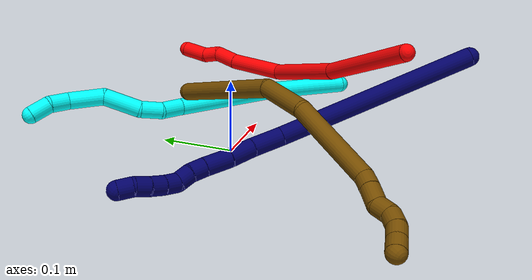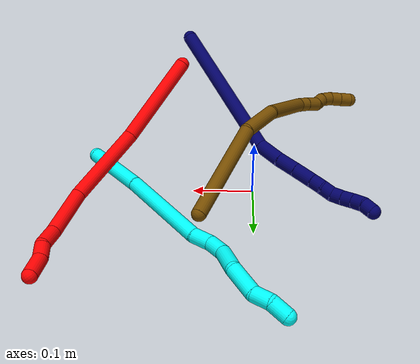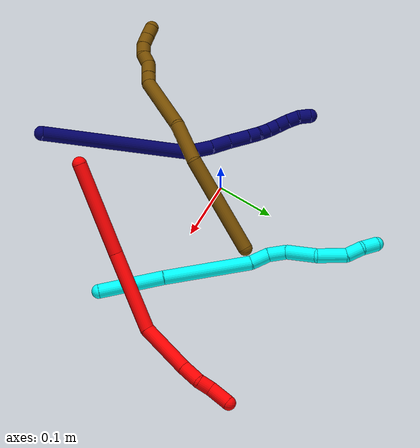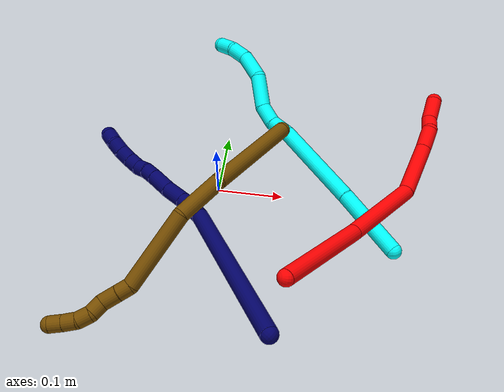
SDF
<sdf version="1.7">
 <world name="default">
  <model name="2">
   <static>0</static>
   <link name="2">
    <collision name="collision-cylinder-e_1_1_4">
     <pose>0.036446 0.018978 0.072016 -0.257671 0.45511 -0.059982</pose>
     <geometry><cylinder><radius>0.0125</radius><length>0.165829</length></cylinder></geometry>
     <surface>
      <friction><ode><mu>1.16</mu><mu2>1.16</mu2><slip1>0</slip1><slip2>0</slip2></ode></friction>
      <contact><ode><kp>1e+06</kp><kd>1</kd><max_vel>0</max_vel><min_depth>0.001</min_depth></ode></contact>
     </surface>
    </collision>
    <visual name="visual-cylinder-e_1_1_4">
     <pose>0.036446 0.018978 0.072016 -0.257671 0.45511 -0.059982</pose>
     <geometry><cylinder><radius>0.0125</radius><length>0.165829</length></cylinder></geometry>
     <material><ambient>1 0 0 1</ambient></material>
    </visual>
    <collision name="collision-cylinder-e_2_4_5">
     <pose>0.100207 0.063323 0.203759 -0.401623 0.398435 -0.082148</pose>
     <geometry><cylinder><radius>0.0125</radius><length>0.140811</length></cylinder></geometry>
     <surface>
      <friction><ode><mu>1.16</mu><mu2>1.16</mu2><slip1>0</slip1><slip2>0</slip2></ode></friction>
      <contact><ode><kp>1e+06</kp><kd>1</kd><max_vel>0</max_vel><min_depth>0.001</min_depth></ode></contact>
     </surface>
    </collision>
    <visual name="visual-cylinder-e_2_4_5">
     <pose>0.100207 0.063323 0.203759 -0.401623 0.398435 -0.082148</pose>
     <geometry><cylinder><radius>0.0125</radius><length>0.140811</length></cylinder></geometry>
     <material><ambient>1 0 0 1</ambient></material>
    </visual>
    <collision name="collision-cylinder-e_3_5_6">
     <pose>0.151952 0.118428 0.288609 -0.869343 0.560408 -0.265647</pose>
     <geometry><cylinder><radius>0.0125</radius><length>0.09192</length></cylinder></geometry>
     <surface>
      <friction><ode><mu>1.16</mu><mu2>1.16</mu2><slip1>0</slip1><slip2>0</slip2></ode></friction>
      <contact><ode><kp>1e+06</kp><kd>1</kd><max_vel>0</max_vel><min_depth>0.001</min_depth></ode></contact>
     </surface>
    </collision>
    <visual name="visual-cylinder-e_3_5_6">
     <pose>0.151952 0.118428 0.288609 -0.869343 0.560408 -0.265647</pose>
     <geometry><cylinder><radius>0.0125</radius><length>0.09192</length></cylinder></geometry>
     <material><ambient>1 0 0 1</ambient></material>
    </visual>
    <collision name="collision-cylinder-e_4_6_7">
     <pose>0.184764 0.162734 0.321548 -1.0783 0.469316 -0.284122</pose>
     <geometry><cylinder><radius>0.0125</radius><length>0.03707</length></cylinder></geometry>
     <surface>
      <friction><ode><mu>1.16</mu><mu2>1.16</mu2><slip1>0</slip1><slip2>0</slip2></ode></friction>
      <contact><ode><kp>1e+06</kp><kd>1</kd><max_vel>0</max_vel><min_depth>0.001</min_depth></ode></contact>
     </surface>
    </collision>
    <visual name="visual-cylinder-e_4_6_7">
     <pose>0.184764 0.162734 0.321548 -1.0783 0.469316 -0.284122</pose>
     <geometry><cylinder><radius>0.0125</radius><length>0.03707</length></cylinder></geometry>
     <material><ambient>1 0 0 1</ambient></material>
    </visual>
    <collision name="collision-cylinder-e_5_7_8">
     <pose>0.202827 0.182755 0.334383 -0.826984 0.917265 -0.426707</pose>
     <geometry><cylinder><radius>0.0125</radius><length>0.024382</length></cylinder></geometry>
     <surface>
      <friction><ode><mu>1.16</mu><mu2>1.16</mu2><slip1>0</slip1><slip2>0</slip2></ode></friction>
      <contact><ode><kp>1e+06</kp><kd>1</kd><max_vel>0</max_vel><min_depth>0.001</min_depth></ode></contact>
     </surface>
    </collision>
    <visual name="visual-cylinder-e_5_7_8">
     <pose>0.202827 0.182755 0.334383 -0.826984 0.917265 -0.426707</pose>
     <geometry><cylinder><radius>0.0125</radius><length>0.024382</length></cylinder></geometry>
     <material><ambient>1 0 0 1</ambient></material>
    </visual>
    <collision name="collision-cylinder-e_6_8_2">
     <pose>0.223385 0.202799 0.347679 -1.05474 0.57538 -0.341303</pose>
     <geometry><cylinder><radius>0.0125</radius><length>0.039988</length></cylinder></geometry>
     <surface>
      <friction><ode><mu>1.16</mu><mu2>1.16</mu2><slip1>0</slip1><slip2>0</slip2></ode></friction>
      <contact><ode><kp>1e+06</kp><kd>1</kd><max_vel>0</max_vel><min_depth>0.001</min_depth></ode></contact>
     </surface>
    </collision>
    <visual name="visual-cylinder-e_6_8_2">
     <pose>0.223385 0.202799 0.347679 -1.05474 0.57538 -0.341303</pose>
     <geometry><cylinder><radius>0.0125</radius><length>0.039988</length></cylinder></geometry>
     <material><ambient>1 0 0 1</ambient></material>
    </visual>
    <collision name="collision-sphere-2">
     <pose>0.234265 0.217389 0.355957 0 -0 0</pose>
     <geometry><sphere><radius>0.0125</radius></sphere></geometry>
     <surface>
      <friction><ode><mu>1.16</mu><mu2>1.16</mu2><slip1>0</slip1><slip2>0</slip2></ode></friction>
      <contact><ode><kp>1e+06</kp><kd>1</kd><max_vel>0</max_vel><min_depth>0.001</min_depth></ode></contact>
     </surface>
    </collision>
    <visual name="visual-sphere-2">
     <pose>0.234265 0.217389 0.355957 0 -0 0</pose>
     <geometry><sphere><radius>0.0125</radius></sphere></geometry>
     <material><ambient>1 0 0 1</ambient></material>
    </visual>
    <collision name="collision-sphere-4">
     <pose>0.072892 0.037957 0.144032 0 -0 0</pose>
     <geometry><sphere><radius>0.0125</radius></sphere></geometry>
     <surface>
      <friction><ode><mu>1.16</mu><mu2>1.16</mu2><slip1>0</slip1><slip2>0</slip2></ode></friction>
      <contact><ode><kp>1e+06</kp><kd>1</kd><max_vel>0</max_vel><min_depth>0.001</min_depth></ode></contact>
     </surface>
    </collision>
    <visual name="visual-sphere-4">
     <pose>0.072892 0.037957 0.144032 0 -0 0</pose>
     <geometry><sphere><radius>0.0125</radius></sphere></geometry>
     <material><ambient>1 0 0 1</ambient></material>
    </visual>
    <collision name="collision-sphere-1">
     <geometry><sphere><radius>0.0125</radius></sphere></geometry>
     <surface>
      <friction><ode><mu>1.16</mu><mu2>1.16</mu2><slip1>0</slip1><slip2>0</slip2></ode></friction>
      <contact><ode><kp>1e+06</kp><kd>1</kd><max_vel>0</max_vel><min_depth>0.001</min_depth></ode></contact>
     </surface>
    </collision>
    <visual name="visual-sphere-1">
     <geometry><sphere><radius>0.0125</radius></sphere></geometry>
     <material><ambient>1 0 0 1</ambient></material>
    </visual>
    <collision name="collision-sphere-8">
     <pose>0.212506 0.188209 0.339402 0 -0 0</pose>
     <geometry><sphere><radius>0.0125</radius></sphere></geometry>
     <surface>
      <friction><ode><mu>1.16</mu><mu2>1.16</mu2><slip1>0</slip1><slip2>0</slip2></ode></friction>
      <contact><ode><kp>1e+06</kp><kd>1</kd><max_vel>0</max_vel><min_depth>0.001</min_depth></ode></contact>
     </surface>
    </collision>
    <visual name="visual-sphere-8">
     <pose>0.212506 0.188209 0.339402 0 -0 0</pose>
     <geometry><sphere><radius>0.0125</radius></sphere></geometry>
     <material><ambient>1 0 0 1</ambient></material>
    </visual>
    <collision name="collision-sphere-5">
     <pose>0.127523 0.08869 0.263486 0 -0 0</pose>
     <geometry><sphere><radius>0.0125</radius></sphere></geometry>
     <surface>
      <friction><ode><mu>1.16</mu><mu2>1.16</mu2><slip1>0</slip1><slip2>0</slip2></ode></friction>
      <contact><ode><kp>1e+06</kp><kd>1</kd><max_vel>0</max_vel><min_depth>0.001</min_depth></ode></contact>
     </surface>
    </collision>
    <visual name="visual-sphere-5">
     <pose>0.127523 0.08869 0.263486 0 -0 0</pose>
     <geometry><sphere><radius>0.0125</radius></sphere></geometry>
     <material><ambient>1 0 0 1</ambient></material>
    </visual>
    <collision name="collision-sphere-6">
     <pose>0.176381 0.148167 0.313731 0 -0 0</pose>
     <geometry><sphere><radius>0.0125</radius></sphere></geometry>
     <surface>
      <friction><ode><mu>1.16</mu><mu2>1.16</mu2><slip1>0</slip1><slip2>0</slip2></ode></friction>
      <contact><ode><kp>1e+06</kp><kd>1</kd><max_vel>0</max_vel><min_depth>0.001</min_depth></ode></contact>
     </surface>
    </collision>
    <visual name="visual-sphere-6">
     <pose>0.176381 0.148167 0.313731 0 -0 0</pose>
     <geometry><sphere><radius>0.0125</radius></sphere></geometry>
     <material><ambient>1 0 0 1</ambient></material>
    </visual>
    <collision name="collision-sphere-7">
     <pose>0.193147 0.1773 0.329364 0 -0 0</pose>
     <geometry><sphere><radius>0.0125</radius></sphere></geometry>
     <surface>
      <friction><ode><mu>1.16</mu><mu2>1.16</mu2><slip1>0</slip1><slip2>0</slip2></ode></friction>
      <contact><ode><kp>1e+06</kp><kd>1</kd><max_vel>0</max_vel><min_depth>0.001</min_depth></ode></contact>
     </surface>
    </collision>
    <visual name="visual-sphere-7">
     <pose>0.193147 0.1773 0.329364 0 -0 0</pose>
     <geometry><sphere><radius>0.0125</radius></sphere></geometry>
     <material><ambient>1 0 0 1</ambient></material>
    </visual>
    <inertial>
     <pose>0.109698 0.083095 0.202277 0 -0 0</pose>
     <mass>0.5</mass>
     <inertia>
      <ixx>0.000593</ixx>
      <ixy>0</ixy>
      <ixz>0</ixz>
      <iyy>0.000615</iyy>
      <iyz>0</iyz>
      <izz>-0.000508</izz>
     </inertia>
    </inertial>
   </link>
   <pose>0.127476 -0.204652 0.125121 2.11398 0.479322 2.22743</pose>
  </model>
  <model name="3">
   <static>0</static>
   <link name="3">
    <collision name="collision-cylinder-e_1_1_4">
     <pose>-0.033278 0.033697 0.031546 -0.818345 -0.624642 0.278231</pose>
     <geometry><cylinder><radius>0.0125</radius><length>0.113807</length></cylinder></geometry>
     <surface>
      <friction><ode><mu>1.16</mu><mu2>1.16</mu2><slip1>0</slip1><slip2>0</slip2></ode></friction>
      <contact><ode><kp>1e+06</kp><kd>1</kd><max_vel>0</max_vel><min_depth>0.001</min_depth></ode></contact>
     </surface>
    </collision>
    <visual name="visual-cylinder-e_1_1_4">
     <pose>-0.033278 0.033697 0.031546 -0.818345 -0.624642 0.278231</pose>
     <geometry><cylinder><radius>0.0125</radius><length>0.113807</length></cylinder></geometry>
     <material><ambient>0.003922 1 0.996078 1</ambient></material>
    </visual>
    <collision name="collision-cylinder-e_2_4_5">
     <pose>-0.112471 0.11694 0.100061 -0.929783 -0.638847 0.328785</pose>
     <geometry><cylinder><radius>0.0125</radius><length>0.154011</length></cylinder></geometry>
     <surface>
      <friction><ode><mu>1.16</mu><mu2>1.16</mu2><slip1>0</slip1><slip2>0</slip2></ode></friction>
      <contact><ode><kp>1e+06</kp><kd>1</kd><max_vel>0</max_vel><min_depth>0.001</min_depth></ode></contact>
     </surface>
    </collision>
    <visual name="visual-cylinder-e_2_4_5">
     <pose>-0.112471 0.11694 0.100061 -0.929783 -0.638847 0.328785</pose>
     <geometry><cylinder><radius>0.0125</radius><length>0.154011</length></cylinder></geometry>
     <material><ambient>0.003922 1 0.996078 1</ambient></material>
    </visual>
    <collision name="collision-cylinder-e_3_5_6">
     <pose>-0.170806 0.173697 0.145405 -0.710694 -0.843567 0.330007</pose>
     <geometry><cylinder><radius>0.0125</radius><length>0.033248</length></cylinder></geometry>
     <surface>
      <friction><ode><mu>1.16</mu><mu2>1.16</mu2><slip1>0</slip1><slip2>0</slip2></ode></friction>
      <contact><ode><kp>1e+06</kp><kd>1</kd><max_vel>0</max_vel><min_depth>0.001</min_depth></ode></contact>
     </surface>
    </collision>
    <visual name="visual-cylinder-e_3_5_6">
     <pose>-0.170806 0.173697 0.145405 -0.710694 -0.843567 0.330007</pose>
     <geometry><cylinder><radius>0.0125</radius><length>0.033248</length></cylinder></geometry>
     <material><ambient>0.003922 1 0.996078 1</ambient></material>
    </visual>
    <collision name="collision-cylinder-e_4_6_7">
     <pose>-0.190839 0.190338 0.164587 -0.717565 -0.48808 0.186219</pose>
     <geometry><cylinder><radius>0.0125</radius><length>0.032478</length></cylinder></geometry>
     <surface>
      <friction><ode><mu>1.16</mu><mu2>1.16</mu2><slip1>0</slip1><slip2>0</slip2></ode></friction>
      <contact><ode><kp>1e+06</kp><kd>1</kd><max_vel>0</max_vel><min_depth>0.001</min_depth></ode></contact>
     </surface>
    </collision>
    <visual name="visual-cylinder-e_4_6_7">
     <pose>-0.190839 0.190338 0.164587 -0.717565 -0.48808 0.186219</pose>
     <geometry><cylinder><radius>0.0125</radius><length>0.032478</length></cylinder></geometry>
     <material><ambient>0.003922 1 0.996078 1</ambient></material>
    </visual>
    <collision name="collision-cylinder-e_5_7_8">
     <pose>-0.201576 0.217037 0.196853 -0.677593 -0.112847 0.039802</pose>
     <geometry><cylinder><radius>0.0125</radius><length>0.055442</length></cylinder></geometry>
     <surface>
      <friction><ode><mu>1.16</mu><mu2>1.16</mu2><slip1>0</slip1><slip2>0</slip2></ode></friction>
      <contact><ode><kp>1e+06</kp><kd>1</kd><max_vel>0</max_vel><min_depth>0.001</min_depth></ode></contact>
     </surface>
    </collision>
    <visual name="visual-cylinder-e_5_7_8">
     <pose>-0.201576 0.217037 0.196853 -0.677593 -0.112847 0.039802</pose>
     <geometry><cylinder><radius>0.0125</radius><length>0.055442</length></cylinder></geometry>
     <material><ambient>0.003922 1 0.996078 1</ambient></material>
    </visual>
    <collision name="collision-cylinder-e_6_8_9">
     <pose>-0.216807 0.253373 0.230854 -0.989015 -0.487823 0.26678</pose>
     <geometry><cylinder><radius>0.0125</radius><length>0.051672</length></cylinder></geometry>
     <surface>
      <friction><ode><mu>1.16</mu><mu2>1.16</mu2><slip1>0</slip1><slip2>0</slip2></ode></friction>
      <contact><ode><kp>1e+06</kp><kd>1</kd><max_vel>0</max_vel><min_depth>0.001</min_depth></ode></contact>
     </surface>
    </collision>
    <visual name="visual-cylinder-e_6_8_9">
     <pose>-0.216807 0.253373 0.230854 -0.989015 -0.487823 0.26678</pose>
     <geometry><cylinder><radius>0.0125</radius><length>0.051672</length></cylinder></geometry>
     <material><ambient>0.003922 1 0.996078 1</ambient></material>
    </visual>
    <collision name="collision-cylinder-e_7_9_10">
     <pose>-0.239954 0.278819 0.250783 -0.71216 -0.84676 0.332124</pose>
     <geometry><cylinder><radius>0.0125</radius><length>0.029469</length></cylinder></geometry>
     <surface>
      <friction><ode><mu>1.16</mu><mu2>1.16</mu2><slip1>0</slip1><slip2>0</slip2></ode></friction>
      <contact><ode><kp>1e+06</kp><kd>1</kd><max_vel>0</max_vel><min_depth>0.001</min_depth></ode></contact>
     </surface>
    </collision>
    <visual name="visual-cylinder-e_7_9_10">
     <pose>-0.239954 0.278819 0.250783 -0.71216 -0.84676 0.332124</pose>
     <geometry><cylinder><radius>0.0125</radius><length>0.029469</length></cylinder></geometry>
     <material><ambient>0.003922 1 0.996078 1</ambient></material>
    </visual>
    <collision name="collision-cylinder-e_8_10_2">
     <pose>-0.262493 0.294401 0.260645 -1.30817 -0.878794 0.691764</pose>
     <geometry><cylinder><radius>0.0125</radius><length>0.029873</length></cylinder></geometry>
     <surface>
      <friction><ode><mu>1.16</mu><mu2>1.16</mu2><slip1>0</slip1><slip2>0</slip2></ode></friction>
      <contact><ode><kp>1e+06</kp><kd>1</kd><max_vel>0</max_vel><min_depth>0.001</min_depth></ode></contact>
     </surface>
    </collision>
    <visual name="visual-cylinder-e_8_10_2">
     <pose>-0.262493 0.294401 0.260645 -1.30817 -0.878794 0.691764</pose>
     <geometry><cylinder><radius>0.0125</radius><length>0.029873</length></cylinder></geometry>
     <material><ambient>0.003922 1 0.996078 1</ambient></material>
    </visual>
    <collision name="collision-sphere-2">
     <pose>-0.273994 0.303605 0.26312 0 -0 0</pose>
     <geometry><sphere><radius>0.0125</radius></sphere></geometry>
     <surface>
      <friction><ode><mu>1.16</mu><mu2>1.16</mu2><slip1>0</slip1><slip2>0</slip2></ode></friction>
      <contact><ode><kp>1e+06</kp><kd>1</kd><max_vel>0</max_vel><min_depth>0.001</min_depth></ode></contact>
     </surface>
    </collision>
    <visual name="visual-sphere-2">
     <pose>-0.273994 0.303605 0.26312 0 -0 0</pose>
     <geometry><sphere><radius>0.0125</radius></sphere></geometry>
     <material><ambient>0.003922 1 0.996078 1</ambient></material>
    </visual>
    <collision name="collision-sphere-10">
     <pose>-0.250992 0.285197 0.258171 0 -0 0</pose>
     <geometry><sphere><radius>0.0125</radius></sphere></geometry>
     <surface>
      <friction><ode><mu>1.16</mu><mu2>1.16</mu2><slip1>0</slip1><slip2>0</slip2></ode></friction>
      <contact><ode><kp>1e+06</kp><kd>1</kd><max_vel>0</max_vel><min_depth>0.001</min_depth></ode></contact>
     </surface>
    </collision>
    <visual name="visual-sphere-10">
     <pose>-0.250992 0.285197 0.258171 0 -0 0</pose>
     <geometry><sphere><radius>0.0125</radius></sphere></geometry>
     <material><ambient>0.003922 1 0.996078 1</ambient></material>
    </visual>
    <collision name="collision-sphere-9">
     <pose>-0.228916 0.272441 0.243395 0 -0 0</pose>
     <geometry><sphere><radius>0.0125</radius></sphere></geometry>
     <surface>
      <friction><ode><mu>1.16</mu><mu2>1.16</mu2><slip1>0</slip1><slip2>0</slip2></ode></friction>
      <contact><ode><kp>1e+06</kp><kd>1</kd><max_vel>0</max_vel><min_depth>0.001</min_depth></ode></contact>
     </surface>
    </collision>
    <visual name="visual-sphere-9">
     <pose>-0.228916 0.272441 0.243395 0 -0 0</pose>
     <geometry><sphere><radius>0.0125</radius></sphere></geometry>
     <material><ambient>0.003922 1 0.996078 1</ambient></material>
    </visual>
    <collision name="collision-sphere-4">
     <pose>-0.066555 0.067393 0.063093 0 -0 0</pose>
     <geometry><sphere><radius>0.0125</radius></sphere></geometry>
     <surface>
      <friction><ode><mu>1.16</mu><mu2>1.16</mu2><slip1>0</slip1><slip2>0</slip2></ode></friction>
      <contact><ode><kp>1e+06</kp><kd>1</kd><max_vel>0</max_vel><min_depth>0.001</min_depth></ode></contact>
     </surface>
    </collision>
    <visual name="visual-sphere-4">
     <pose>-0.066555 0.067393 0.063093 0 -0 0</pose>
     <geometry><sphere><radius>0.0125</radius></sphere></geometry>
     <material><ambient>0.003922 1 0.996078 1</ambient></material>
    </visual>
    <collision name="collision-sphere-1">
     <geometry><sphere><radius>0.0125</radius></sphere></geometry>
     <surface>
      <friction><ode><mu>1.16</mu><mu2>1.16</mu2><slip1>0</slip1><slip2>0</slip2></ode></friction>
      <contact><ode><kp>1e+06</kp><kd>1</kd><max_vel>0</max_vel><min_depth>0.001</min_depth></ode></contact>
     </surface>
    </collision>
    <visual name="visual-sphere-1">
     <geometry><sphere><radius>0.0125</radius></sphere></geometry>
     <material><ambient>0.003922 1 0.996078 1</ambient></material>
    </visual>
    <collision name="collision-sphere-8">
     <pose>-0.204697 0.234306 0.218312 0 -0 0</pose>
     <geometry><sphere><radius>0.0125</radius></sphere></geometry>
     <surface>
      <friction><ode><mu>1.16</mu><mu2>1.16</mu2><slip1>0</slip1><slip2>0</slip2></ode></friction>
      <contact><ode><kp>1e+06</kp><kd>1</kd><max_vel>0</max_vel><min_depth>0.001</min_depth></ode></contact>
     </surface>
    </collision>
    <visual name="visual-sphere-8">
     <pose>-0.204697 0.234306 0.218312 0 -0 0</pose>
     <geometry><sphere><radius>0.0125</radius></sphere></geometry>
     <material><ambient>0.003922 1 0.996078 1</ambient></material>
    </visual>
    <collision name="collision-sphere-5">
     <pose>-0.158387 0.166487 0.137029 0 -0 0</pose>
     <geometry><sphere><radius>0.0125</radius></sphere></geometry>
     <surface>
      <friction><ode><mu>1.16</mu><mu2>1.16</mu2><slip1>0</slip1><slip2>0</slip2></ode></friction>
      <contact><ode><kp>1e+06</kp><kd>1</kd><max_vel>0</max_vel><min_depth>0.001</min_depth></ode></contact>
     </surface>
    </collision>
    <visual name="visual-sphere-5">
     <pose>-0.158387 0.166487 0.137029 0 -0 0</pose>
     <geometry><sphere><radius>0.0125</radius></sphere></geometry>
     <material><ambient>0.003922 1 0.996078 1</ambient></material>
    </visual>
    <collision name="collision-sphere-6">
     <pose>-0.183224 0.180906 0.153781 0 -0 0</pose>
     <geometry><sphere><radius>0.0125</radius></sphere></geometry>
     <surface>
      <friction><ode><mu>1.16</mu><mu2>1.16</mu2><slip1>0</slip1><slip2>0</slip2></ode></friction>
      <contact><ode><kp>1e+06</kp><kd>1</kd><max_vel>0</max_vel><min_depth>0.001</min_depth></ode></contact>
     </surface>
    </collision>
    <visual name="visual-sphere-6">
     <pose>-0.183224 0.180906 0.153781 0 -0 0</pose>
     <geometry><sphere><radius>0.0125</radius></sphere></geometry>
     <material><ambient>0.003922 1 0.996078 1</ambient></material>
    </visual>
    <collision name="collision-sphere-7">
     <pose>-0.198454 0.199769 0.175393 0 -0 0</pose>
     <geometry><sphere><radius>0.0125</radius></sphere></geometry>
     <surface>
      <friction><ode><mu>1.16</mu><mu2>1.16</mu2><slip1>0</slip1><slip2>0</slip2></ode></friction>
      <contact><ode><kp>1e+06</kp><kd>1</kd><max_vel>0</max_vel><min_depth>0.001</min_depth></ode></contact>
     </surface>
    </collision>
    <visual name="visual-sphere-7">
     <pose>-0.198454 0.199769 0.175393 0 -0 0</pose>
     <geometry><sphere><radius>0.0125</radius></sphere></geometry>
     <material><ambient>0.003922 1 0.996078 1</ambient></material>
    </visual>
    <inertial>
     <pose>-0.140555 0.151877 0.134399 0 -0 0</pose>
     <mass>0.5</mass>
     <inertia><ixx>0.000468</ixx><ixy>0</ixy><ixz>0</ixz><iyy>0.000496</iyy><iyz>0</iyz><izz>-5e-06</izz></inertia>
    </inertial>
   </link>
   <pose>0.275285 -0.079087 0.011495 -0.512385 -0.234053 0.086218</pose>
  </model>
  <model name="7">
   <static>0</static>
   <link name="7">
    <collision name="collision-cylinder-e_1_1_4">
     <pose>-0.120984 0.043203 0.034342 -0.899172 -1.14282 0.60168</pose>
     <geometry><cylinder><radius>0.0125</radius><length>0.265956</length></cylinder></geometry>
     <surface>
      <friction><ode><mu>1.16</mu><mu2>1.16</mu2><slip1>0</slip1><slip2>0</slip2></ode></friction>
      <contact><ode><kp>1e+06</kp><kd>1</kd><max_vel>0</max_vel><min_depth>0.001</min_depth></ode></contact>
     </surface>
    </collision>
    <visual name="visual-cylinder-e_1_1_4">
     <pose>-0.120984 0.043203 0.034342 -0.899172 -1.14282 0.60168</pose>
     <geometry><cylinder><radius>0.0125</radius><length>0.265956</length></cylinder></geometry>
     <material><ambient>0.003922 0 0.403922 1</ambient></material>
    </visual>
    <collision name="collision-cylinder-e_2_4_5">
     <pose>-0.263735 0.088168 0.069987 -0.934211 -1.47048 0.855854</pose>
     <geometry><cylinder><radius>0.0125</radius><length>0.043752</length></cylinder></geometry>
     <surface>
      <friction><ode><mu>1.16</mu><mu2>1.16</mu2><slip1>0</slip1><slip2>0</slip2></ode></friction>
      <contact><ode><kp>1e+06</kp><kd>1</kd><max_vel>0</max_vel><min_depth>0.001</min_depth></ode></contact>
     </surface>
    </collision>
    <visual name="visual-cylinder-e_2_4_5">
     <pose>-0.263735 0.088168 0.069987 -0.934211 -1.47048 0.855854</pose>
     <geometry><cylinder><radius>0.0125</radius><length>0.043752</length></cylinder></geometry>
     <material><ambient>0.003922 0 0.403922 1</ambient></material>
    </visual>
    <collision name="collision-cylinder-e_3_5_6">
     <pose>-0.302438 0.090888 0.070542 -2.23348 -1.49915 2.17572</pose>
     <geometry><cylinder><radius>0.0125</radius><length>0.033961</length></cylinder></geometry>
     <surface>
      <friction><ode><mu>1.16</mu><mu2>1.16</mu2><slip1>0</slip1><slip2>0</slip2></ode></friction>
      <contact><ode><kp>1e+06</kp><kd>1</kd><max_vel>0</max_vel><min_depth>0.001</min_depth></ode></contact>
     </surface>
    </collision>
    <visual name="visual-cylinder-e_3_5_6">
     <pose>-0.302438 0.090888 0.070542 -2.23348 -1.49915 2.17572</pose>
     <geometry><cylinder><radius>0.0125</radius><length>0.033961</length></cylinder></geometry>
     <material><ambient>0.003922 0 0.403922 1</ambient></material>
    </visual>
    <collision name="collision-cylinder-e_4_6_7">
     <pose>-0.337367 0.092243 0.070501 -0.511421 -1.52575 0.489799</pose>
     <geometry><cylinder><radius>0.0125</radius><length>0.036021</length></cylinder></geometry>
     <surface>
      <friction><ode><mu>1.16</mu><mu2>1.16</mu2><slip1>0</slip1><slip2>0</slip2></ode></friction>
      <contact><ode><kp>1e+06</kp><kd>1</kd><max_vel>0</max_vel><min_depth>0.001</min_depth></ode></contact>
     </surface>
    </collision>
    <visual name="visual-cylinder-e_4_6_7">
     <pose>-0.337367 0.092243 0.070501 -0.511421 -1.52575 0.489799</pose>
     <geometry><cylinder><radius>0.0125</radius><length>0.036021</length></cylinder></geometry>
     <material><ambient>0.003922 0 0.403922 1</ambient></material>
    </visual>
    <collision name="collision-cylinder-e_5_7_8">
     <pose>-0.365413 0.093203 0.071168 -1.64254 -1.51476 1.58654</pose>
     <geometry><cylinder><radius>0.0125</radius><length>0.020137</length></cylinder></geometry>
     <surface>
      <friction><ode><mu>1.16</mu><mu2>1.16</mu2><slip1>0</slip1><slip2>0</slip2></ode></friction>
      <contact><ode><kp>1e+06</kp><kd>1</kd><max_vel>0</max_vel><min_depth>0.001</min_depth></ode></contact>
     </surface>
    </collision>
    <visual name="visual-cylinder-e_5_7_8">
     <pose>-0.365413 0.093203 0.071168 -1.64254 -1.51476 1.58654</pose>
     <geometry><cylinder><radius>0.0125</radius><length>0.020137</length></cylinder></geometry>
     <material><ambient>0.003922 0 0.403922 1</ambient></material>
    </visual>
    <collision name="collision-cylinder-e_6_8_9">
     <pose>-0.385156 0.095835 0.069349 -2.28055 -1.29627 2.05128</pose>
     <geometry><cylinder><radius>0.0125</radius><length>0.020134</length></cylinder></geometry>
     <surface>
      <friction><ode><mu>1.16</mu><mu2>1.16</mu2><slip1>0</slip1><slip2>0</slip2></ode></friction>
      <contact><ode><kp>1e+06</kp><kd>1</kd><max_vel>0</max_vel><min_depth>0.001</min_depth></ode></contact>
     </surface>
    </collision>
    <visual name="visual-cylinder-e_6_8_9">
     <pose>-0.385156 0.095835 0.069349 -2.28055 -1.29627 2.05128</pose>
     <geometry><cylinder><radius>0.0125</radius><length>0.020134</length></cylinder></geometry>
     <material><ambient>0.003922 0 0.403922 1</ambient></material>
    </visual>
    <collision name="collision-cylinder-e_7_9_10">
     <pose>-0.404614 0.095741 0.067518 1.59502 -1.35265 -1.37637</pose>
     <geometry><cylinder><radius>0.0125</radius><length>0.020011</length></cylinder></geometry>
     <surface>
      <friction><ode><mu>1.16</mu><mu2>1.16</mu2><slip1>0</slip1><slip2>0</slip2></ode></friction>
      <contact><ode><kp>1e+06</kp><kd>1</kd><max_vel>0</max_vel><min_depth>0.001</min_depth></ode></contact>
     </surface>
    </collision>
    <visual name="visual-cylinder-e_7_9_10">
     <pose>-0.404614 0.095741 0.067518 1.59502 -1.35265 -1.37637</pose>
     <geometry><cylinder><radius>0.0125</radius><length>0.020011</length></cylinder></geometry>
     <material><ambient>0.003922 0 0.403922 1</ambient></material>
    </visual>
    <collision name="collision-cylinder-e_8_10_11">
     <pose>-0.423927 0.090587 0.067885 1.43133 -1.26448 -1.13421</pose>
     <geometry><cylinder><radius>0.0125</radius><length>0.02002</length></cylinder></geometry>
     <surface>
      <friction><ode><mu>1.16</mu><mu2>1.16</mu2><slip1>0</slip1><slip2>0</slip2></ode></friction>
      <contact><ode><kp>1e+06</kp><kd>1</kd><max_vel>0</max_vel><min_depth>0.001</min_depth></ode></contact>
     </surface>
    </collision>
    <visual name="visual-cylinder-e_8_10_11">
     <pose>-0.423927 0.090587 0.067885 1.43133 -1.26448 -1.13421</pose>
     <geometry><cylinder><radius>0.0125</radius><length>0.02002</length></cylinder></geometry>
     <material><ambient>0.003922 0 0.403922 1</ambient></material>
    </visual>
    <collision name="collision-cylinder-e_9_11_12">
     <pose>-0.442909 0.084641 0.069798 1.10329 -1.23328 -0.822641</pose>
     <geometry><cylinder><radius>0.0125</radius><length>0.020005</length></cylinder></geometry>
     <surface>
      <friction><ode><mu>1.16</mu><mu2>1.16</mu2><slip1>0</slip1><slip2>0</slip2></ode></friction>
      <contact><ode><kp>1e+06</kp><kd>1</kd><max_vel>0</max_vel><min_depth>0.001</min_depth></ode></contact>
     </surface>
    </collision>
    <visual name="visual-cylinder-e_9_11_12">
     <pose>-0.442909 0.084641 0.069798 1.10329 -1.23328 -0.822641</pose>
     <geometry><cylinder><radius>0.0125</radius><length>0.020005</length></cylinder></geometry>
     <material><ambient>0.003922 0 0.403922 1</ambient></material>
    </visual>
    <collision name="collision-cylinder-e_10_12_2">
     <pose>-0.462123 0.081884 0.07339 -0.095043 -1.35834 0.076747</pose>
     <geometry><cylinder><radius>0.0125</radius><length>0.020001</length></cylinder></geometry>
     <surface>
      <friction><ode><mu>1.16</mu><mu2>1.16</mu2><slip1>0</slip1><slip2>0</slip2></ode></friction>
      <contact><ode><kp>1e+06</kp><kd>1</kd><max_vel>0</max_vel><min_depth>0.001</min_depth></ode></contact>
     </surface>
    </collision>
    <visual name="visual-cylinder-e_10_12_2">
     <pose>-0.462123 0.081884 0.07339 -0.095043 -1.35834 0.076747</pose>
     <geometry><cylinder><radius>0.0125</radius><length>0.020001</length></cylinder></geometry>
     <material><ambient>0.003922 0 0.403922 1</ambient></material>
    </visual>
    <collision name="collision-sphere-2">
     <pose>-0.471899 0.082084 0.075489 0 -0 0</pose>
     <geometry><sphere><radius>0.0125</radius></sphere></geometry>
     <surface>
      <friction><ode><mu>1.16</mu><mu2>1.16</mu2><slip1>0</slip1><slip2>0</slip2></ode></friction>
      <contact><ode><kp>1e+06</kp><kd>1</kd><max_vel>0</max_vel><min_depth>0.001</min_depth></ode></contact>
     </surface>
    </collision>
    <visual name="visual-sphere-2">
     <pose>-0.471899 0.082084 0.075489 0 -0 0</pose>
     <geometry><sphere><radius>0.0125</radius></sphere></geometry>
     <material><ambient>0.003922 0 0.403922 1</ambient></material>
    </visual>
    <collision name="collision-sphere-12">
     <pose>-0.452348 0.081684 0.07129 0 -0 0</pose>
     <geometry><sphere><radius>0.0125</radius></sphere></geometry>
     <surface>
      <friction><ode><mu>1.16</mu><mu2>1.16</mu2><slip1>0</slip1><slip2>0</slip2></ode></friction>
      <contact><ode><kp>1e+06</kp><kd>1</kd><max_vel>0</max_vel><min_depth>0.001</min_depth></ode></contact>
     </surface>
    </collision>
    <visual name="visual-sphere-12">
     <pose>-0.452348 0.081684 0.07129 0 -0 0</pose>
     <geometry><sphere><radius>0.0125</radius></sphere></geometry>
     <material><ambient>0.003922 0 0.403922 1</ambient></material>
    </visual>
    <collision name="collision-sphere-11">
     <pose>-0.433471 0.087597 0.068305 0 -0 0</pose>
     <geometry><sphere><radius>0.0125</radius></sphere></geometry>
     <surface>
      <friction><ode><mu>1.16</mu><mu2>1.16</mu2><slip1>0</slip1><slip2>0</slip2></ode></friction>
      <contact><ode><kp>1e+06</kp><kd>1</kd><max_vel>0</max_vel><min_depth>0.001</min_depth></ode></contact>
     </surface>
    </collision>
    <visual name="visual-sphere-11">
     <pose>-0.433471 0.087597 0.068305 0 -0 0</pose>
     <geometry><sphere><radius>0.0125</radius></sphere></geometry>
     <material><ambient>0.003922 0 0.403922 1</ambient></material>
    </visual>
    <collision name="collision-sphere-10">
     <pose>-0.414383 0.093576 0.067466 0 -0 0</pose>
     <geometry><sphere><radius>0.0125</radius></sphere></geometry>
     <surface>
      <friction><ode><mu>1.16</mu><mu2>1.16</mu2><slip1>0</slip1><slip2>0</slip2></ode></friction>
      <contact><ode><kp>1e+06</kp><kd>1</kd><max_vel>0</max_vel><min_depth>0.001</min_depth></ode></contact>
     </surface>
    </collision>
    <visual name="visual-sphere-10">
     <pose>-0.414383 0.093576 0.067466 0 -0 0</pose>
     <geometry><sphere><radius>0.0125</radius></sphere></geometry>
     <material><ambient>0.003922 0 0.403922 1</ambient></material>
    </visual>
    <collision name="collision-sphere-9">
     <pose>-0.394846 0.097905 0.067571 0 -0 0</pose>
     <geometry><sphere><radius>0.0125</radius></sphere></geometry>
     <surface>
      <friction><ode><mu>1.16</mu><mu2>1.16</mu2><slip1>0</slip1><slip2>0</slip2></ode></friction>
      <contact><ode><kp>1e+06</kp><kd>1</kd><max_vel>0</max_vel><min_depth>0.001</min_depth></ode></contact>
     </surface>
    </collision>
    <visual name="visual-sphere-9">
     <pose>-0.394846 0.097905 0.067571 0 -0 0</pose>
     <geometry><sphere><radius>0.0125</radius></sphere></geometry>
     <material><ambient>0.003922 0 0.403922 1</ambient></material>
    </visual>
    <collision name="collision-sphere-4">
     <pose>-0.241969 0.086407 0.068685 0 -0 0</pose>
     <geometry><sphere><radius>0.0125</radius></sphere></geometry>
     <surface>
      <friction><ode><mu>1.16</mu><mu2>1.16</mu2><slip1>0</slip1><slip2>0</slip2></ode></friction>
      <contact><ode><kp>1e+06</kp><kd>1</kd><max_vel>0</max_vel><min_depth>0.001</min_depth></ode></contact>
     </surface>
    </collision>
    <visual name="visual-sphere-4">
     <pose>-0.241969 0.086407 0.068685 0 -0 0</pose>
     <geometry><sphere><radius>0.0125</radius></sphere></geometry>
     <material><ambient>0.003922 0 0.403922 1</ambient></material>
    </visual>
    <collision name="collision-sphere-1">
     <geometry><sphere><radius>0.0125</radius></sphere></geometry>
     <surface>
      <friction><ode><mu>1.16</mu><mu2>1.16</mu2><slip1>0</slip1><slip2>0</slip2></ode></friction>
      <contact><ode><kp>1e+06</kp><kd>1</kd><max_vel>0</max_vel><min_depth>0.001</min_depth></ode></contact>
     </surface>
    </collision>
    <visual name="visual-sphere-1">
     <geometry><sphere><radius>0.0125</radius></sphere></geometry>
     <material><ambient>0.003922 0 0.403922 1</ambient></material>
    </visual>
    <collision name="collision-sphere-8">
     <pose>-0.375465 0.093765 0.071127 0 -0 0</pose>
     <geometry><sphere><radius>0.0125</radius></sphere></geometry>
     <surface>
      <friction><ode><mu>1.16</mu><mu2>1.16</mu2><slip1>0</slip1><slip2>0</slip2></ode></friction>
      <contact><ode><kp>1e+06</kp><kd>1</kd><max_vel>0</max_vel><min_depth>0.001</min_depth></ode></contact>
     </surface>
    </collision>
    <visual name="visual-sphere-8">
     <pose>-0.375465 0.093765 0.071127 0 -0 0</pose>
     <geometry><sphere><radius>0.0125</radius></sphere></geometry>
     <material><ambient>0.003922 0 0.403922 1</ambient></material>
    </visual>
    <collision name="collision-sphere-5">
     <pose>-0.285501 0.08993 0.071289 0 -0 0</pose>
     <geometry><sphere><radius>0.0125</radius></sphere></geometry>
     <surface>
      <friction><ode><mu>1.16</mu><mu2>1.16</mu2><slip1>0</slip1><slip2>0</slip2></ode></friction>
      <contact><ode><kp>1e+06</kp><kd>1</kd><max_vel>0</max_vel><min_depth>0.001</min_depth></ode></contact>
     </surface>
    </collision>
    <visual name="visual-sphere-5">
     <pose>-0.285501 0.08993 0.071289 0 -0 0</pose>
     <geometry><sphere><radius>0.0125</radius></sphere></geometry>
     <material><ambient>0.003922 0 0.403922 1</ambient></material>
    </visual>
    <collision name="collision-sphere-6">
     <pose>-0.319375 0.091847 0.069794 0 -0 0</pose>
     <geometry><sphere><radius>0.0125</radius></sphere></geometry>
     <surface>
      <friction><ode><mu>1.16</mu><mu2>1.16</mu2><slip1>0</slip1><slip2>0</slip2></ode></friction>
      <contact><ode><kp>1e+06</kp><kd>1</kd><max_vel>0</max_vel><min_depth>0.001</min_depth></ode></contact>
     </surface>
    </collision>
    <visual name="visual-sphere-6">
     <pose>-0.319375 0.091847 0.069794 0 -0 0</pose>
     <geometry><sphere><radius>0.0125</radius></sphere></geometry>
     <material><ambient>0.003922 0 0.403922 1</ambient></material>
    </visual>
    <collision name="collision-sphere-7">
     <pose>-0.35536 0.09264 0.071208 0 -0 0</pose>
     <geometry><sphere><radius>0.0125</radius></sphere></geometry>
     <surface>
      <friction><ode><mu>1.16</mu><mu2>1.16</mu2><slip1>0</slip1><slip2>0</slip2></ode></friction>
      <contact><ode><kp>1e+06</kp><kd>1</kd><max_vel>0</max_vel><min_depth>0.001</min_depth></ode></contact>
     </surface>
    </collision>
    <visual name="visual-sphere-7">
     <pose>-0.35536 0.09264 0.071208 0 -0 0</pose>
     <geometry><sphere><radius>0.0125</radius></sphere></geometry>
     <material><ambient>0.003922 0 0.403922 1</ambient></material>
    </visual>
    <inertial>
     <pose>-0.23188 0.065248 0.051069 0 -0 0</pose>
     <mass>0.5</mass>
     <inertia>
      <ixx>0.000875</ixx>
      <ixy>0</ixy>
      <ixz>0</ixz>
      <iyy>0.00185</iyy>
      <iyz>0</iyz>
      <izz>0.000956</izz>
     </inertia>
    </inertial>
   </link>
   <pose>0.116442 -0.288531 0.133086 -1.32518 -0.10789 -0.660198</pose>
  </model>
  <model name="12">
   <static>0</static>
   <link name="12">
    <collision name="collision-cylinder-e_1_1_4">
     <pose>-0.032234 -0.020495 0.078897 0.254148 -0.376561 -0.048677</pose>
     <geometry><cylinder><radius>0.0125</radius><length>0.175315</length></cylinder></geometry>
     <surface>
      <friction><ode><mu>1.16</mu><mu2>1.16</mu2><slip1>0</slip1><slip2>0</slip2></ode></friction>
      <contact><ode><kp>1e+06</kp><kd>1</kd><max_vel>0</max_vel><min_depth>0.001</min_depth></ode></contact>
     </surface>
    </collision>
    <visual name="visual-cylinder-e_1_1_4">
     <pose>-0.032234 -0.020495 0.078897 0.254148 -0.376561 -0.048677</pose>
     <geometry><cylinder><radius>0.0125</radius><length>0.175315</length></cylinder></geometry>
     <material><ambient>0.466667 0.301961 0 1</ambient></material>
    </visual>
    <collision name="collision-cylinder-e_2_4_5">
     <pose>-0.066534 -0.04144 0.194621 0.012239 -0.056037 -0.000343</pose>
     <geometry><cylinder><radius>0.0125</radius><length>0.073774</length></cylinder></geometry>
     <surface>
      <friction><ode><mu>1.16</mu><mu2>1.16</mu2><slip1>0</slip1><slip2>0</slip2></ode></friction>
      <contact><ode><kp>1e+06</kp><kd>1</kd><max_vel>0</max_vel><min_depth>0.001</min_depth></ode></contact>
     </surface>
    </collision>
    <visual name="visual-cylinder-e_2_4_5">
     <pose>-0.066534 -0.04144 0.194621 0.012239 -0.056037 -0.000343</pose>
     <geometry><cylinder><radius>0.0125</radius><length>0.073774</length></cylinder></geometry>
     <material><ambient>0.466667 0.301961 0 1</ambient></material>
    </visual>
    <collision name="collision-cylinder-e_3_5_6">
     <pose>-0.064019 -0.022468 0.288691 -0.327118 0.075628 -0.012487</pose>
     <geometry><cylinder><radius>0.0125</radius><length>0.121246</length></cylinder></geometry>
     <surface>
      <friction><ode><mu>1.16</mu><mu2>1.16</mu2><slip1>0</slip1><slip2>0</slip2></ode></friction>
      <contact><ode><kp>1e+06</kp><kd>1</kd><max_vel>0</max_vel><min_depth>0.001</min_depth></ode></contact>
     </surface>
    </collision>
    <visual name="visual-cylinder-e_3_5_6">
     <pose>-0.064019 -0.022468 0.288691 -0.327118 0.075628 -0.012487</pose>
     <geometry><cylinder><radius>0.0125</radius><length>0.121246</length></cylinder></geometry>
     <material><ambient>0.466667 0.301961 0 1</ambient></material>
    </visual>
    <collision name="collision-cylinder-e_4_6_7">
     <pose>-0.05602 -0.003141 0.355365 0.010232 0.347827 0.001798</pose>
     <geometry><cylinder><radius>0.0125</radius><length>0.020061</length></cylinder></geometry>
     <surface>
      <friction><ode><mu>1.16</mu><mu2>1.16</mu2><slip1>0</slip1><slip2>0</slip2></ode></friction>
      <contact><ode><kp>1e+06</kp><kd>1</kd><max_vel>0</max_vel><min_depth>0.001</min_depth></ode></contact>
     </surface>
    </collision>
    <visual name="visual-cylinder-e_4_6_7">
     <pose>-0.05602 -0.003141 0.355365 0.010232 0.347827 0.001798</pose>
     <geometry><cylinder><radius>0.0125</radius><length>0.020061</length></cylinder></geometry>
     <material><ambient>0.466667 0.301961 0 1</ambient></material>
    </visual>
    <collision name="collision-cylinder-e_5_7_8">
     <pose>-0.047424 -0.002969 0.376925 -0.022116 0.403273 -0.004521</pose>
     <geometry><cylinder><radius>0.0125</radius><length>0.026386</length></cylinder></geometry>
     <surface>
      <friction><ode><mu>1.16</mu><mu2>1.16</mu2><slip1>0</slip1><slip2>0</slip2></ode></friction>
      <contact><ode><kp>1e+06</kp><kd>1</kd><max_vel>0</max_vel><min_depth>0.001</min_depth></ode></contact>
     </surface>
    </collision>
    <visual name="visual-cylinder-e_5_7_8">
     <pose>-0.047424 -0.002969 0.376925 -0.022116 0.403273 -0.004521</pose>
     <geometry><cylinder><radius>0.0125</radius><length>0.026386</length></cylinder></geometry>
     <material><ambient>0.466667 0.301961 0 1</ambient></material>
    </visual>
    <collision name="collision-cylinder-e_6_8_9">
     <pose>-0.04312 -0.002331 0.399743 -0.034593 -0.081569 0.001412</pose>
     <geometry><cylinder><radius>0.0125</radius><length>0.021457</length></cylinder></geometry>
     <surface>
      <friction><ode><mu>1.16</mu><mu2>1.16</mu2><slip1>0</slip1><slip2>0</slip2></ode></friction>
      <contact><ode><kp>1e+06</kp><kd>1</kd><max_vel>0</max_vel><min_depth>0.001</min_depth></ode></contact>
     </surface>
    </collision>
    <visual name="visual-cylinder-e_6_8_9">
     <pose>-0.04312 -0.002331 0.399743 -0.034593 -0.081569 0.001412</pose>
     <geometry><cylinder><radius>0.0125</radius><length>0.021457</length></cylinder></geometry>
     <material><ambient>0.466667 0.301961 0 1</ambient></material>
    </visual>
    <collision name="collision-cylinder-e_7_9_10">
     <pose>-0.040365 -0.002931 0.420052 0.100512 0.358964 0.018251</pose>
     <geometry><cylinder><radius>0.0125</radius><length>0.020661</length></cylinder></geometry>
     <surface>
      <friction><ode><mu>1.16</mu><mu2>1.16</mu2><slip1>0</slip1><slip2>0</slip2></ode></friction>
      <contact><ode><kp>1e+06</kp><kd>1</kd><max_vel>0</max_vel><min_depth>0.001</min_depth></ode></contact>
     </surface>
    </collision>
    <visual name="visual-cylinder-e_7_9_10">
     <pose>-0.040365 -0.002931 0.420052 0.100512 0.358964 0.018251</pose>
     <geometry><cylinder><radius>0.0125</radius><length>0.020661</length></cylinder></geometry>
     <material><ambient>0.466667 0.301961 0 1</ambient></material>
    </visual>
    <collision name="collision-cylinder-e_8_10_11">
     <pose>-0.030548 -0.006213 0.437585 0.284347 0.644141 0.095455</pose>
     <geometry><cylinder><radius>0.0125</radius><length>0.02061</length></cylinder></geometry>
     <surface>
      <friction><ode><mu>1.16</mu><mu2>1.16</mu2><slip1>0</slip1><slip2>0</slip2></ode></friction>
      <contact><ode><kp>1e+06</kp><kd>1</kd><max_vel>0</max_vel><min_depth>0.001</min_depth></ode></contact>
     </surface>
    </collision>
    <visual name="visual-cylinder-e_8_10_11">
     <pose>-0.030548 -0.006213 0.437585 0.284347 0.644141 0.095455</pose>
     <geometry><cylinder><radius>0.0125</radius><length>0.02061</length></cylinder></geometry>
     <material><ambient>0.466667 0.301961 0 1</ambient></material>
    </visual>
    <collision name="collision-cylinder-e_9_11_2">
     <pose>-0.018169 -0.011424 0.453126 0.363006 0.648805 0.123275</pose>
     <geometry><cylinder><radius>0.0125</radius><length>0.020492</length></cylinder></geometry>
     <surface>
      <friction><ode><mu>1.16</mu><mu2>1.16</mu2><slip1>0</slip1><slip2>0</slip2></ode></friction>
      <contact><ode><kp>1e+06</kp><kd>1</kd><max_vel>0</max_vel><min_depth>0.001</min_depth></ode></contact>
     </surface>
    </collision>
    <visual name="visual-cylinder-e_9_11_2">
     <pose>-0.018169 -0.011424 0.453126 0.363006 0.648805 0.123275</pose>
     <geometry><cylinder><radius>0.0125</radius><length>0.020492</length></cylinder></geometry>
     <material><ambient>0.466667 0.301961 0 1</ambient></material>
    </visual>
    <collision name="collision-sphere-2">
     <pose>-0.011978 -0.014323 0.460758 0 -0 0</pose>
     <geometry><sphere><radius>0.0125</radius></sphere></geometry>
     <surface>
      <friction><ode><mu>1.16</mu><mu2>1.16</mu2><slip1>0</slip1><slip2>0</slip2></ode></friction>
      <contact><ode><kp>1e+06</kp><kd>1</kd><max_vel>0</max_vel><min_depth>0.001</min_depth></ode></contact>
     </surface>
    </collision>
    <visual name="visual-sphere-2">
     <pose>-0.011978 -0.014323 0.460758 0 -0 0</pose>
     <geometry><sphere><radius>0.0125</radius></sphere></geometry>
     <material><ambient>0.466667 0.301961 0 1</ambient></material>
    </visual>
    <collision name="collision-sphere-11">
     <pose>-0.02436 -0.008525 0.445494 0 -0 0</pose>
     <geometry><sphere><radius>0.0125</radius></sphere></geometry>
     <surface>
      <friction><ode><mu>1.16</mu><mu2>1.16</mu2><slip1>0</slip1><slip2>0</slip2></ode></friction>
      <contact><ode><kp>1e+06</kp><kd>1</kd><max_vel>0</max_vel><min_depth>0.001</min_depth></ode></contact>
     </surface>
    </collision>
    <visual name="visual-sphere-11">
     <pose>-0.02436 -0.008525 0.445494 0 -0 0</pose>
     <geometry><sphere><radius>0.0125</radius></sphere></geometry>
     <material><ambient>0.466667 0.301961 0 1</ambient></material>
    </visual>
    <collision name="collision-sphere-10">
     <pose>-0.036736 -0.003902 0.429676 0 -0 0</pose>
     <geometry><sphere><radius>0.0125</radius></sphere></geometry>
     <surface>
      <friction><ode><mu>1.16</mu><mu2>1.16</mu2><slip1>0</slip1><slip2>0</slip2></ode></friction>
      <contact><ode><kp>1e+06</kp><kd>1</kd><max_vel>0</max_vel><min_depth>0.001</min_depth></ode></contact>
     </surface>
    </collision>
    <visual name="visual-sphere-10">
     <pose>-0.036736 -0.003902 0.429676 0 -0 0</pose>
     <geometry><sphere><radius>0.0125</radius></sphere></geometry>
     <material><ambient>0.466667 0.301961 0 1</ambient></material>
    </visual>
    <collision name="collision-sphere-9">
     <pose>-0.043995 -0.001961 0.410429 0 -0 0</pose>
     <geometry><sphere><radius>0.0125</radius></sphere></geometry>
     <surface>
      <friction><ode><mu>1.16</mu><mu2>1.16</mu2><slip1>0</slip1><slip2>0</slip2></ode></friction>
      <contact><ode><kp>1e+06</kp><kd>1</kd><max_vel>0</max_vel><min_depth>0.001</min_depth></ode></contact>
     </surface>
    </collision>
    <visual name="visual-sphere-9">
     <pose>-0.043995 -0.001961 0.410429 0 -0 0</pose>
     <geometry><sphere><radius>0.0125</radius></sphere></geometry>
     <material><ambient>0.466667 0.301961 0 1</ambient></material>
    </visual>
    <collision name="collision-sphere-4">
     <pose>-0.064468 -0.04099 0.157795 0 -0 0</pose>
     <geometry><sphere><radius>0.0125</radius></sphere></geometry>
     <surface>
      <friction><ode><mu>1.16</mu><mu2>1.16</mu2><slip1>0</slip1><slip2>0</slip2></ode></friction>
      <contact><ode><kp>1e+06</kp><kd>1</kd><max_vel>0</max_vel><min_depth>0.001</min_depth></ode></contact>
     </surface>
    </collision>
    <visual name="visual-sphere-4">
     <pose>-0.064468 -0.04099 0.157795 0 -0 0</pose>
     <geometry><sphere><radius>0.0125</radius></sphere></geometry>
     <material><ambient>0.466667 0.301961 0 1</ambient></material>
    </visual>
    <collision name="collision-sphere-1">
     <geometry><sphere><radius>0.0125</radius></sphere></geometry>
     <surface>
      <friction><ode><mu>1.16</mu><mu2>1.16</mu2><slip1>0</slip1><slip2>0</slip2></ode></friction>
      <contact><ode><kp>1e+06</kp><kd>1</kd><max_vel>0</max_vel><min_depth>0.001</min_depth></ode></contact>
     </surface>
    </collision>
    <visual name="visual-sphere-1">
     <geometry><sphere><radius>0.0125</radius></sphere></geometry>
     <material><ambient>0.466667 0.301961 0 1</ambient></material>
    </visual>
    <collision name="collision-sphere-8">
     <pose>-0.042246 -0.002701 0.389057 0 -0 0</pose>
     <geometry><sphere><radius>0.0125</radius></sphere></geometry>
     <surface>
      <friction><ode><mu>1.16</mu><mu2>1.16</mu2><slip1>0</slip1><slip2>0</slip2></ode></friction>
      <contact><ode><kp>1e+06</kp><kd>1</kd><max_vel>0</max_vel><min_depth>0.001</min_depth></ode></contact>
     </surface>
    </collision>
    <visual name="visual-sphere-8">
     <pose>-0.042246 -0.002701 0.389057 0 -0 0</pose>
     <geometry><sphere><radius>0.0125</radius></sphere></geometry>
     <material><ambient>0.466667 0.301961 0 1</ambient></material>
    </visual>
    <collision name="collision-sphere-5">
     <pose>-0.0686 -0.041891 0.231447 0 -0 0</pose>
     <geometry><sphere><radius>0.0125</radius></sphere></geometry>
     <surface>
      <friction><ode><mu>1.16</mu><mu2>1.16</mu2><slip1>0</slip1><slip2>0</slip2></ode></friction>
      <contact><ode><kp>1e+06</kp><kd>1</kd><max_vel>0</max_vel><min_depth>0.001</min_depth></ode></contact>
     </surface>
    </collision>
    <visual name="visual-sphere-5">
     <pose>-0.0686 -0.041891 0.231447 0 -0 0</pose>
     <geometry><sphere><radius>0.0125</radius></sphere></geometry>
     <material><ambient>0.466667 0.301961 0 1</ambient></material>
    </visual>
    <collision name="collision-sphere-6">
     <pose>-0.059439 -0.003044 0.345936 0 -0 0</pose>
     <geometry><sphere><radius>0.0125</radius></sphere></geometry>
     <surface>
      <friction><ode><mu>1.16</mu><mu2>1.16</mu2><slip1>0</slip1><slip2>0</slip2></ode></friction>
      <contact><ode><kp>1e+06</kp><kd>1</kd><max_vel>0</max_vel><min_depth>0.001</min_depth></ode></contact>
     </surface>
    </collision>
    <visual name="visual-sphere-6">
     <pose>-0.059439 -0.003044 0.345936 0 -0 0</pose>
     <geometry><sphere><radius>0.0125</radius></sphere></geometry>
     <material><ambient>0.466667 0.301961 0 1</ambient></material>
    </visual>
    <collision name="collision-sphere-7">
     <pose>-0.052601 -0.003237 0.364794 0 -0 0</pose>
     <geometry><sphere><radius>0.0125</radius></sphere></geometry>
     <surface>
      <friction><ode><mu>1.16</mu><mu2>1.16</mu2><slip1>0</slip1><slip2>0</slip2></ode></friction>
      <contact><ode><kp>1e+06</kp><kd>1</kd><max_vel>0</max_vel><min_depth>0.001</min_depth></ode></contact>
     </surface>
    </collision>
    <visual name="visual-sphere-7">
     <pose>-0.052601 -0.003237 0.364794 0 -0 0</pose>
     <geometry><sphere><radius>0.0125</radius></sphere></geometry>
     <material><ambient>0.466667 0.301961 0 1</ambient></material>
    </visual>
    <inertial>
     <pose>-0.046916 -0.019977 0.231653 0 -0 0</pose>
     <mass>0.5</mass>
     <inertia>
      <ixx>0.000599</ixx>
      <ixy>0</ixy>
      <ixz>0</ixz>
      <iyy>0.000611</iyy>
      <iyz>0</iyz>
      <izz>0.000249</izz>
     </inertia>
    </inertial>
   </link>
   <pose>0.086382 0.101223 0.041223 -1.69308 0.570623 2.41415</pose>
  </model>
 </world>
</sdf>
